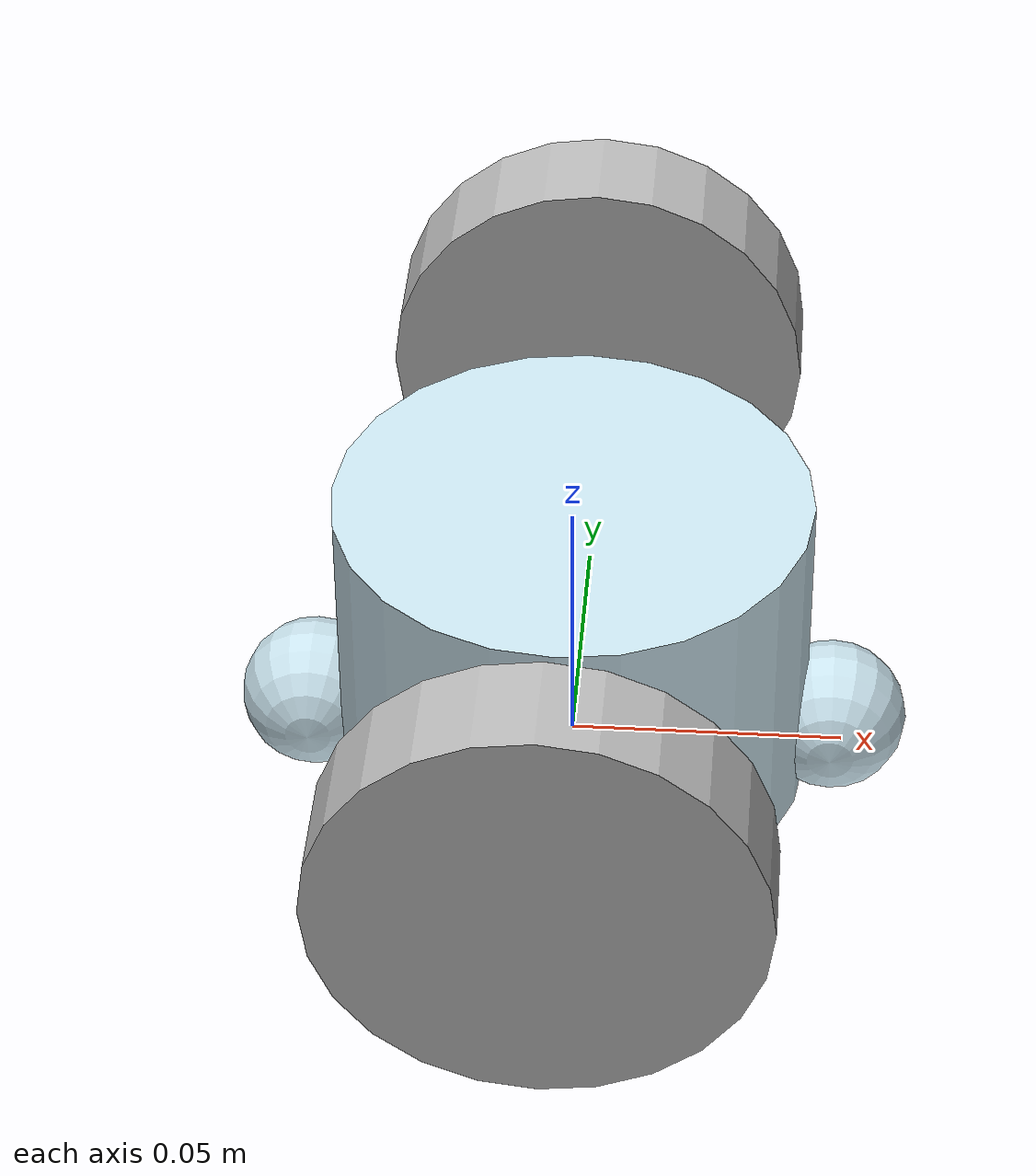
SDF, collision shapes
<?xml version='1.0'?>
<sdf version='1.5'>
  <model name='swarm_robot'>
    <link name='base'>
      <pose>0 0 0 0 0 0</pose>
      <gravity>1</gravity>
      <self_collide>0</self_collide>
      <inertial>
        <mass>0.38441</mass>
        <pose>0 0 0.024 0 0 0</pose>
        <inertia>
          <ixx>0.000288</ixx>
          <ixy>0</ixy>
          <ixz>0</ixz>
          <iyy>0</iyy>
          <iyz>0.000389</iyz>
          <izz>0</izz>
        </inertia>
      </inertial>
      <visual name='base_visual'>
        <pose>0 0 0.024 0 -0 0</pose>
        <geometry>
          <mesh>
            <uri>model://swarm_robot/meshes/swarmBot.stl</uri>
          </mesh>
        </geometry>
        <material>
          <lighting>1</lighting>
          <script>
            <uri>file://media/materials/scripts/gazebo.material</uri>
            <name>Gazebo/Grey</name>
          </script>
          <shader type='pixel'>
            <normal_map>__default__</normal_map>
          </shader>
          <ambient>0.792 0.892 0.933 1</ambient>
          <diffuse>0.7 0.7 0.7 1</diffuse>
          <specular>0.01 0.01 0.01 1</specular>
          <emissive>0 0 0 1</emissive>
        </material>
        <cast_shadows>1</cast_shadows>
        <transparency>0</transparency>
      </visual>
      <collision name='base_collision'>
        <pose>0 0 0.024 0 -0 0</pose>
        <geometry>
          <cylinder>
            <radius>0.043301</radius>
            <length>0.060000</length>
          </cylinder>
        </geometry>
      </collision>
    <collision name="front_wheel_collision">
        <pose>0.048000 0 0.006000 0 1.570700 1.570700</pose>
        <geometry>
          <sphere>
            <radius>0.013700</radius>
          </sphere>
        </geometry>
        <surface>
          <friction>
            <ode>
              <mu>0</mu>
              <mu2>0</mu2>
              <fdir1>0 0 0</fdir1>
              <slip1>0</slip1>
              <slip2>0</slip2>
            </ode>
          </friction>
        </surface>
      </collision>
      <visual name="front_wheel_visual">
        <pose>0.048000 0 0.006000 0 1.570700 1.570700</pose>
        <geometry>
          <sphere>
            <radius>0.013700</radius>
          </sphere>
        </geometry>
      </visual>

      <collision name="rear_wheel_collision">
        <pose>-0.048000 0 0.006000 0 1.570700 1.570700</pose>
        <geometry>
          <sphere>
            <radius>0.013700</radius>
          </sphere>
        </geometry>
        <surface>
          <friction>
            <ode>
              <mu>0</mu>
              <mu2>0</mu2>
              <fdir1>0 0 0</fdir1>
              <slip1>0</slip1>
              <slip2>0</slip2>
            </ode>
          </friction>
        </surface>
      </collision>
      <visual name="rear_wheel_visual">
        <pose>-0.048000 0 0.006000 0 1.570700 1.570700</pose>
        <geometry>
          <sphere>
            <radius>0.013700</radius>
          </sphere>
        </geometry>
      </visual>

      <sensor name="left_cliff_sensor" type="ray">
        <pose>0.018750 0.032475 0.024000 0 1.570790 0</pose>
        <ray>
          <scan>
            <horizontal>
              <samples>1</samples>
              <resolution>1.000000</resolution>
              <min_angle>0</min_angle>
              <max_angle>0</max_angle>
            </horizontal>
          </scan>
          <range>
            <min>0.010000</min>
            <max>0.040000</max>
            <resolution>0.100000</resolution>
          </range>
        </ray>
      </sensor>

      <sensor name="leftfront_cliff_sensor" type="ray">
        <pose>0.032475 0.018750 0.024000 0 1.570790 0</pose>
        <ray>
          <scan>
            <horizontal>
              <samples>1</samples>
              <resolution>1.000000</resolution>
              <min_angle>0</min_angle>
              <max_angle>0</max_angle>
            </horizontal>
          </scan>
          <range>
            <min>0.010000</min>
            <max>0.040000</max>
            <resolution>0.100000</resolution>
          </range>
        </ray>
      </sensor>

      <sensor name="right_cliff_sensor" type="ray">
        <pose>0.018750 -0.032475 0.022000 0 1.570790 0</pose>
        <ray>
          <scan>
            <horizontal>
              <samples>1</samples>
              <resolution>1.000000</resolution>
              <min_angle>0</min_angle>
              <max_angle>0</max_angle>
            </horizontal>
          </scan>
          <range>
            <min>0.010000</min>
            <max>0.040000</max>
            <resolution>0.100000</resolution>
          </range>
        </ray>
      </sensor>

      <sensor name="rightfront_cliff_sensor" type="ray">
        <pose>0.032475 -0.018750 0.022000 0 1.570790 0</pose>
        <ray>
          <scan>
            <horizontal>
              <samples>1</samples>
              <resolution>1.000000</resolution>
              <min_angle>0</min_angle>
              <max_angle>0</max_angle>
            </horizontal>
          </scan>
          <range>
            <min>0.010000</min>
            <max>0.040000</max>
            <resolution>0.100000</resolution>
          </range>
        </ray>
      </sensor>

      <sensor name="wall_sensor" type="ray">
        <pose>0.033000 -0.020000 0.079000 0 0 -1.000000</pose>
        <ray>
          <scan>
            <horizontal>
              <samples>1</samples>
              <resolution>1.000000</resolution>
              <min_angle>0</min_angle>
              <max_angle>0</max_angle>
            </horizontal>
          </scan>
          <range>
            <min>0.016000</min>
            <max>0.040000</max>
            <resolution>0.100000</resolution>
          </range>
        </ray>
      </sensor>

      <sensor name="camera1" type="camera">
        <pose>0.000000 0.000000 0.134000 0 0 0</pose>
        <camera>
          <horizontal_fov>1.047</horizontal_fov>
          <image>
            <width>320</width>
            <height>240</height>
          </image>
          <clip>
            <near>0.02</near>
            <far>100</far>
          </clip>
          <noise>
          <type>gaussian</type>
          <!-- Noise is sampled independently per pixel on each frame.
               That pixel's noise value is added to each of its color
               channels, which at that point lie in the range [0,1]. -->
          <mean>0.0</mean>
          <stddev>0.007</stddev>
        </noise>
        </camera>
        <plugin name="camera_controller" filename="libgazebo_ros_camera.so">
          <always_on>1</always_on>
          <update_rate>30</update_rate>
          <cameraName>camera1</cameraName>
          <imageTopicName>image_raw</imageTopicName>
          <cameraInfoTopicName>camera_info</cameraInfoTopicName>
          <frameName>camera_link</frameName>
          <hackBaseline>0.07</hackBaseline>
          <distortionK1>0.0</distortionK1>
          <distortionK2>0.0</distortionK2>
          <distortionK3>0.0</distortionK3>
          <distortionT1>0.0</distortionT1>
          <distortionT2>0.0</distortionT2>
        </plugin>
        <always_on>1</always_on>
        <update_rate>30</update_rate>
        <visualize>true</visualize>
      </sensor>
    </link>

    <link name="left_wheel">
      <pose>0 0.077000 0.034000 0 0 0</pose>
      <inertial>
        <inertia>
          <ixx>0.001000</ixx>
          <ixy>0</ixy>
          <ixz>0</ixz>
          <iyy>0.001000</iyy>
          <iyz>0</iyz>
          <izz>0.001000</izz>
        </inertia>
        <mass>0.010000</mass>
      </inertial>
      <collision name="collision">
        <pose>0 0 0 0 1.570700 1.570700</pose>
        <geometry>
          <cylinder>
            <radius>0.039500</radius>
            <length>0.020000</length>
          </cylinder>
        </geometry>
        <surface>
          <friction>
            <ode>
              <mu>10</mu>
              <mu2>10</mu2>
              <fdir1>0 0 0</fdir1>
              <slip1>0</slip1>
              <slip2>0</slip2>
            </ode>
          </friction>
        </surface>
      </collision>
      <visual name="visual">
        <pose>0 0 0 0 1.570700 1.570700</pose>
        <geometry>
          <cylinder>
            <radius>0.039500</radius>
            <length>0.020000</length>
          </cylinder>
        </geometry>
      </visual>
    </link>

    <link name="right_wheel">
      <pose>0 -0.077000 0.034000 0 0 0</pose>
      <inertial>
        <inertia>
          <ixx>0.001000</ixx>
          <ixy>0</ixy>
          <ixz>0</ixz>
          <iyy>0.001000</iyy>
          <iyz>0</iyz>
          <izz>0.001000</izz>
        </inertia>
        <mass>0.010000</mass>
      </inertial>
      <collision name="collision">
        <pose>0 0 0 0 1.570700 1.570700</pose>
        <geometry>
          <cylinder>
            <radius>0.039500</radius>
            <length>0.020000</length>
          </cylinder>
        </geometry>
        <surface>
          <friction>
            <ode>
              <mu>10</mu>
              <mu2>10</mu2>
              <fdir1>0 0 0</fdir1>
              <slip1>0</slip1>
              <slip2>0</slip2>
            </ode>
          </friction>
        </surface>
      </collision>
      <visual name="visual">
        <pose>0 0 0 0 1.570700 1.570700</pose>
        <geometry>
          <cylinder>
            <radius>0.039500</radius>
            <length>0.020000</length>
          </cylinder>
        </geometry>
      </visual>
    </link>

    <joint name="left_wheel" type="revolute">
      <parent>base</parent>
      <child>left_wheel</child>
      <axis>
        <xyz>0 1 0</xyz>
        <use_parent_model_frame>true</use_parent_model_frame>
      </axis>
    </joint>

    <joint name="right_wheel" type="revolute">
      <parent>base</parent>
      <child>right_wheel</child>
      <axis>
        <xyz>0 1 0</xyz>
        <use_parent_model_frame>true</use_parent_model_frame>
      </axis>
    </joint>

    <plugin name="differential_drive_controller" filename="libgazebo_ros_diff_drive.so">
      <alwaysOn>true</alwaysOn>
      <updateRate>10</updateRate>
      <leftJoint>left_wheel</leftJoint>
      <rightJoint>right_wheel</rightJoint>
      <wheelSeparation>0.154</wheelSeparation>
      <wheelDiameter>0.079</wheelDiameter>
      <torque>20</torque>
      <commandTopic>cmd_vel</commandTopic>
      <odometryTopic>odom</odometryTopic>
      <odometryFrame>odom</odometryFrame>
      <robotBaseFrame>base_footprint</robotBaseFrame>
      </plugin>

  </model>
</sdf>
